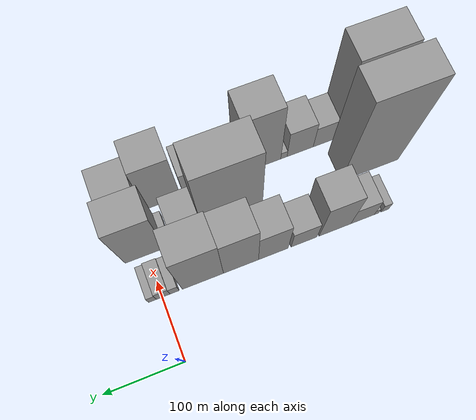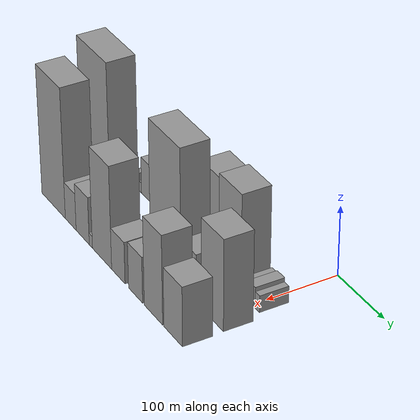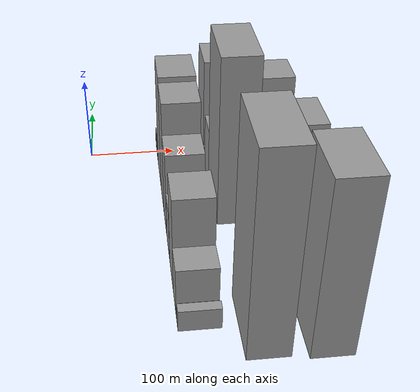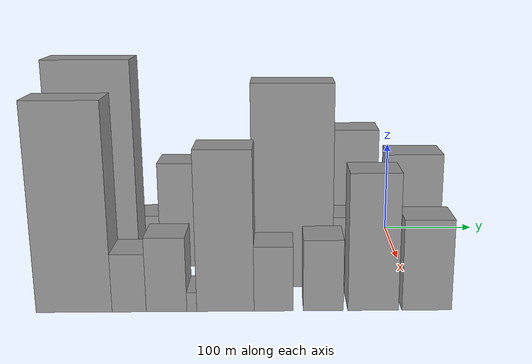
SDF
<sdf version="1.6">
 <world name="default">
  <model name="building_10">
   <static>1</static>
   <pose>100.0000 -290.2716 0 0.000000 0.000000 0.000000</pose>
   <link name="link">
    <pose>0 0 12.00 0 0 0</pose>
    <collision name="collision"><geometry><box><size>40.0000 10.3939 24.0000</size></box></geometry></collision>
    <visual name="visual">
     <cast_shadows>0</cast_shadows>
     <geometry><box><size>40.0000 10.3939 24.0000</size></box></geometry>
     <material>
      <script>
       <uri>model://grey_wall/materials/scripts</uri>
       <uri>model://grey_wall/materials/textures</uri>
       <name>vrc/grey_wall</name>
      </script>
     </material>
    </visual>
   </link>
  </model>
  <model name="building_11">
   <static>1</static>
   <pose>100.0000 -278.9836 0 0.000000 0.000000 0.000000</pose>
   <link name="link">
    <pose>0 0 7.50 0 0 0</pose>
    <collision name="collision"><geometry><box><size>40.0000 6.1822 15.0000</size></box></geometry></collision>
    <visual name="visual">
     <cast_shadows>0</cast_shadows>
     <geometry><box><size>40.0000 6.1822 15.0000</size></box></geometry>
     <material>
      <script>
       <uri>model://grey_wall/materials/scripts</uri>
       <uri>model://grey_wall/materials/textures</uri>
       <name>vrc/grey_wall</name>
      </script>
     </material>
    </visual>
   </link>
  </model>
  <model name="building_12">
   <static>1</static>
   <pose>100.0000 -260.1429 0 0.000000 0.000000 0.000000</pose>
   <link name="link">
    <pose>0 0 27.00 0 0 0</pose>
    <collision name="collision"><geometry><box><size>40.0000 31.4992 54.0000</size></box></geometry></collision>
    <visual name="visual">
     <cast_shadows>0</cast_shadows>
     <geometry><box><size>40.0000 31.4992 54.0000</size></box></geometry>
     <material>
      <script>
       <uri>model://grey_wall/materials/scripts</uri>
       <uri>model://grey_wall/materials/textures</uri>
       <name>vrc/grey_wall</name>
      </script>
     </material>
    </visual>
   </link>
  </model>
  <model name="building_13">
   <static>1</static>
   <pose>100.0000 -223.2417 0 0.000000 0.000000 0.000000</pose>
   <link name="link">
    <pose>0 0 54.00 0 0 0</pose>
    <collision name="collision"><geometry><box><size>40.0000 42.3031 108.0000</size></box></geometry></collision>
    <visual name="visual">
     <cast_shadows>0</cast_shadows>
     <geometry><box><size>40.0000 42.3031 108.0000</size></box></geometry>
     <material>
      <script>
       <uri>model://grey_wall/materials/scripts</uri>
       <uri>model://grey_wall/materials/textures</uri>
       <name>vrc/grey_wall</name>
      </script>
     </material>
    </visual>
   </link>
  </model>
  <model name="building_14">
   <static>1</static>
   <pose>100.0000 -182.0863 0 0.000000 0.000000 0.000000</pose>
   <link name="link">
    <pose>0 0 28.50 0 0 0</pose>
    <collision name="collision"><geometry><box><size>40.0000 34.0078 57.0000</size></box></geometry></collision>
    <visual name="visual">
     <cast_shadows>0</cast_shadows>
     <geometry><box><size>40.0000 34.0078 57.0000</size></box></geometry>
     <material>
      <script>
       <uri>model://grey_wall/materials/scripts</uri>
       <uri>model://grey_wall/materials/textures</uri>
       <name>vrc/grey_wall</name>
      </script>
     </material>
    </visual>
   </link>
  </model>
  <model name="building_15">
   <static>1</static>
   <pose>100.0000 -141.8271 0 0.000000 0.000000 0.000000</pose>
   <link name="link">
    <pose>0 0 49.50 0 0 0</pose>
    <collision name="collision"><geometry><box><size>40.0000 38.5107 99.0000</size></box></geometry></collision>
    <visual name="visual">
     <cast_shadows>0</cast_shadows>
     <geometry><box><size>40.0000 38.5107 99.0000</size></box></geometry>
     <material>
      <script>
       <uri>model://grey_wall/materials/scripts</uri>
       <uri>model://grey_wall/materials/textures</uri>
       <name>vrc/grey_wall</name>
      </script>
     </material>
    </visual>
   </link>
  </model>
  <model name="building_16">
   <static>1</static>
   <pose>100.0000 -100.0000 0 0.000000 0.000000 0.000000</pose>
   <link name="link">
    <pose>0 0 67.50 0 0 0</pose>
    <collision name="collision"><geometry><box><size>40.0000 45.1434 135.0000</size></box></geometry></collision>
    <visual name="visual">
     <cast_shadows>0</cast_shadows>
     <geometry><box><size>40.0000 45.1434 135.0000</size></box></geometry>
     <material>
      <script>
       <uri>model://grey_wall/materials/scripts</uri>
       <uri>model://grey_wall/materials/textures</uri>
       <name>vrc/grey_wall</name>
      </script>
     </material>
    </visual>
   </link>
  </model>
  <model name="building_17">
   <static>1</static>
   <pose>100.0000 -51.3280 0 0.000000 0.000000 0.000000</pose>
   <link name="link">
    <pose>0 0 70.50 0 0 0</pose>
    <collision name="collision"><geometry><box><size>40.0000 52.2006 141.0000</size></box></geometry></collision>
    <visual name="visual">
     <cast_shadows>0</cast_shadows>
     <geometry><box><size>40.0000 52.2006 141.0000</size></box></geometry>
     <material>
      <script>
       <uri>model://grey_wall/materials/scripts</uri>
       <uri>model://grey_wall/materials/textures</uri>
       <name>vrc/grey_wall</name>
      </script>
     </material>
    </visual>
   </link>
  </model>
  <model name="building_18">
   <static>1</static>
   <pose>100.0000 -15.4119 0 0.000000 0.000000 0.000000</pose>
   <link name="link">
    <pose>0 0 13.50 0 0 0</pose>
    <collision name="collision"><geometry><box><size>40.0000 11.6316 27.0000</size></box></geometry></collision>
    <visual name="visual">
     <cast_shadows>0</cast_shadows>
     <geometry><box><size>40.0000 11.6316 27.0000</size></box></geometry>
     <material>
      <script>
       <uri>model://grey_wall/materials/scripts</uri>
       <uri>model://grey_wall/materials/textures</uri>
       <name>vrc/grey_wall</name>
      </script>
     </material>
    </visual>
   </link>
  </model>
  <model name="building_19">
   <static>1</static>
   <pose>100.0000 -1.0945 0 0.000000 0.000000 0.000000</pose>
   <link name="link">
    <pose>0 0 15.00 0 0 0</pose>
    <collision name="collision"><geometry><box><size>40.0000 17.0032 30.0000</size></box></geometry></collision>
    <visual name="visual">
     <cast_shadows>0</cast_shadows>
     <geometry><box><size>40.0000 17.0032 30.0000</size></box></geometry>
     <material>
      <script>
       <uri>model://grey_wall/materials/scripts</uri>
       <uri>model://grey_wall/materials/textures</uri>
       <name>vrc/grey_wall</name>
      </script>
     </material>
    </visual>
   </link>
  </model>
  <model name="building_20">
   <static>1</static>
   <pose>100.0000 12.2904 0 0.000000 0.000000 0.000000</pose>
   <link name="link">
    <pose>0 0 12.00 0 0 0</pose>
    <collision name="collision"><geometry><box><size>40.0000 9.7668 24.0000</size></box></geometry></collision>
    <visual name="visual">
     <cast_shadows>0</cast_shadows>
     <geometry><box><size>40.0000 9.7668 24.0000</size></box></geometry>
     <material>
      <script>
       <uri>model://grey_wall/materials/scripts</uri>
       <uri>model://grey_wall/materials/textures</uri>
       <name>vrc/grey_wall</name>
      </script>
     </material>
    </visual>
   </link>
  </model>
  <model name="building_45">
   <static>1</static>
   <pose>155.0000 -294.8767 0 0.000000 0.000000 0.000000</pose>
   <link name="link">
    <pose>0 0 108.00 0 0 0</pose>
    <collision name="collision"><geometry><box><size>40.0000 78.9314 216.0000</size></box></geometry></collision>
    <visual name="visual">
     <cast_shadows>0</cast_shadows>
     <geometry><box><size>40.0000 78.9314 216.0000</size></box></geometry>
     <material>
      <script>
       <uri>model://grey_wall/materials/scripts</uri>
       <uri>model://grey_wall/materials/textures</uri>
       <name>vrc/grey_wall</name>
      </script>
     </material>
    </visual>
   </link>
  </model>
  <model name="building_46">
   <static>1</static>
   <pose>155.0000 -110.9300 0 0.000000 0.000000 0.000000</pose>
   <link name="link">
    <pose>0 0 97.50 0 0 0</pose>
    <collision name="collision"><geometry><box><size>40.0000 76.3207 195.0000</size></box></geometry></collision>
    <visual name="visual">
     <cast_shadows>0</cast_shadows>
     <geometry><box><size>40.0000 76.3207 195.0000</size></box></geometry>
     <material>
      <script>
       <uri>model://grey_wall/materials/scripts</uri>
       <uri>model://grey_wall/materials/textures</uri>
       <name>vrc/grey_wall</name>
      </script>
     </material>
    </visual>
   </link>
  </model>
  <model name="building_47">
   <static>1</static>
   <pose>155.0000 -54.3617 0 0.000000 0.000000 0.000000</pose>
   <link name="link">
    <pose>0 0 34.50 0 0 0</pose>
    <collision name="collision"><geometry><box><size>40.0000 36.8159 69.0000</size></box></geometry></collision>
    <visual name="visual">
     <cast_shadows>0</cast_shadows>
     <geometry><box><size>40.0000 36.8159 69.0000</size></box></geometry>
     <material>
      <script>
       <uri>model://grey_wall/materials/scripts</uri>
       <uri>model://grey_wall/materials/textures</uri>
       <name>vrc/grey_wall</name>
      </script>
     </material>
    </visual>
   </link>
  </model>
  <model name="building_48">
   <static>1</static>
   <pose>155.0000 -27.6196 0 0.000000 0.000000 0.000000</pose>
   <link name="link">
    <pose>0 0 10.50 0 0 0</pose>
    <collision name="collision"><geometry><box><size>40.0000 8.6682 21.0000</size></box></geometry></collision>
    <visual name="visual">
     <cast_shadows>0</cast_shadows>
     <geometry><box><size>40.0000 8.6682 21.0000</size></box></geometry>
     <material>
      <script>
       <uri>model://grey_wall/materials/scripts</uri>
       <uri>model://grey_wall/materials/textures</uri>
       <name>vrc/grey_wall</name>
      </script>
     </material>
    </visual>
   </link>
  </model>
  <model name="building_49">
   <static>1</static>
   <pose>155.0000 2.4574 0 0.000000 0.000000 0.000000</pose>
   <link name="link">
    <pose>0 0 64.50 0 0 0</pose>
    <collision name="collision"><geometry><box><size>40.0000 51.4859 129.0000</size></box></geometry></collision>
    <visual name="visual">
     <cast_shadows>0</cast_shadows>
     <geometry><box><size>40.0000 51.4859 129.0000</size></box></geometry>
     <material>
      <script>
       <uri>model://grey_wall/materials/scripts</uri>
       <uri>model://grey_wall/materials/textures</uri>
       <name>vrc/grey_wall</name>
      </script>
     </material>
    </visual>
   </link>
  </model>
  <model name="building_76">
   <static>1</static>
   <pose>210.0000 -305.0166 0 0.000000 0.000000 0.000000</pose>
   <link name="link">
    <pose>0 0 94.50 0 0 0</pose>
    <collision name="collision"><geometry><box><size>40.0000 66.9933 189.0000</size></box></geometry></collision>
    <visual name="visual">
     <cast_shadows>0</cast_shadows>
     <geometry><box><size>40.0000 66.9933 189.0000</size></box></geometry>
     <material>
      <script>
       <uri>model://grey_wall/materials/scripts</uri>
       <uri>model://grey_wall/materials/textures</uri>
       <name>vrc/grey_wall</name>
      </script>
     </material>
    </visual>
   </link>
  </model>
  <model name="building_77">
   <static>1</static>
   <pose>210.0000 -256.4347 0 0.000000 0.000000 0.000000</pose>
   <link name="link">
    <pose>0 0 27.00 0 0 0</pose>
    <collision name="collision"><geometry><box><size>40.0000 30.1704 54.0000</size></box></geometry></collision>
    <visual name="visual">
     <cast_shadows>0</cast_shadows>
     <geometry><box><size>40.0000 30.1704 54.0000</size></box></geometry>
     <material>
      <script>
       <uri>model://grey_wall/materials/scripts</uri>
       <uri>model://grey_wall/materials/textures</uri>
       <name>vrc/grey_wall</name>
      </script>
     </material>
    </visual>
   </link>
  </model>
  <model name="building_78">
   <static>1</static>
   <pose>210.0000 -223.4032 0 0.000000 0.000000 0.000000</pose>
   <link name="link">
    <pose>0 0 34.50 0 0 0</pose>
    <collision name="collision"><geometry><box><size>40.0000 35.8927 69.0000</size></box></geometry></collision>
    <visual name="visual">
     <cast_shadows>0</cast_shadows>
     <geometry><box><size>40.0000 35.8927 69.0000</size></box></geometry>
     <material>
      <script>
       <uri>model://grey_wall/materials/scripts</uri>
       <uri>model://grey_wall/materials/textures</uri>
       <name>vrc/grey_wall</name>
      </script>
     </material>
    </visual>
   </link>
  </model>
  <model name="building_79">
   <static>1</static>
   <pose>210.0000 -201.1148 0 0.000000 0.000000 0.000000</pose>
   <link name="link">
    <pose>0 0 9.00 0 0 0</pose>
    <collision name="collision"><geometry><box><size>40.0000 8.6841 18.0000</size></box></geometry></collision>
    <visual name="visual">
     <cast_shadows>0</cast_shadows>
     <geometry><box><size>40.0000 8.6841 18.0000</size></box></geometry>
     <material>
      <script>
       <uri>model://grey_wall/materials/scripts</uri>
       <uri>model://grey_wall/materials/textures</uri>
       <name>vrc/grey_wall</name>
      </script>
     </material>
    </visual>
   </link>
  </model>
  <model name="building_80">
   <static>1</static>
   <pose>210.0000 -171.3349 0 0.000000 0.000000 0.000000</pose>
   <link name="link">
    <pose>0 0 73.50 0 0 0</pose>
    <collision name="collision"><geometry><box><size>40.0000 50.8756 147.0000</size></box></geometry></collision>
    <visual name="visual">
     <cast_shadows>0</cast_shadows>
     <geometry><box><size>40.0000 50.8756 147.0000</size></box></geometry>
     <material>
      <script>
       <uri>model://grey_wall/materials/scripts</uri>
       <uri>model://grey_wall/materials/textures</uri>
       <name>vrc/grey_wall</name>
      </script>
     </material>
    </visual>
   </link>
  </model>
  <model name="building_81">
   <static>1</static>
   <pose>210.0000 -128.5498 0 0.000000 0.000000 0.000000</pose>
   <link name="link">
    <pose>0 0 30.00 0 0 0</pose>
    <collision name="collision"><geometry><box><size>40.0000 34.6947 60.0000</size></box></geometry></collision>
    <visual name="visual">
     <cast_shadows>0</cast_shadows>
     <geometry><box><size>40.0000 34.6947 60.0000</size></box></geometry>
     <material>
      <script>
       <uri>model://grey_wall/materials/scripts</uri>
       <uri>model://grey_wall/materials/textures</uri>
       <name>vrc/grey_wall</name>
      </script>
     </material>
    </visual>
   </link>
  </model>
  <model name="building_82">
   <static>1</static>
   <pose>210.0000 -84.4028 0 0.000000 0.000000 0.000000</pose>
   <link name="link">
    <pose>0 0 33.00 0 0 0</pose>
    <collision name="collision"><geometry><box><size>40.0000 35.5993 66.0000</size></box></geometry></collision>
    <visual name="visual">
     <cast_shadows>0</cast_shadows>
     <geometry><box><size>40.0000 35.5993 66.0000</size></box></geometry>
     <material>
      <script>
       <uri>model://grey_wall/materials/scripts</uri>
       <uri>model://grey_wall/materials/textures</uri>
       <name>vrc/grey_wall</name>
      </script>
     </material>
    </visual>
   </link>
  </model>
  <model name="building_83">
   <static>1</static>
   <pose>210.0000 -40.0048 0 0.000000 0.000000 0.000000</pose>
   <link name="link">
    <pose>0 0 63.00 0 0 0</pose>
    <collision name="collision"><geometry><box><size>40.0000 45.1968 126.0000</size></box></geometry></collision>
    <visual name="visual">
     <cast_shadows>0</cast_shadows>
     <geometry><box><size>40.0000 45.1968 126.0000</size></box></geometry>
     <material>
      <script>
       <uri>model://grey_wall/materials/scripts</uri>
       <uri>model://grey_wall/materials/textures</uri>
       <name>vrc/grey_wall</name>
      </script>
     </material>
    </visual>
   </link>
  </model>
  <model name="building_84">
   <static>1</static>
   <pose>210.0000 7.7388 0 0.000000 0.000000 0.000000</pose>
   <link name="link">
    <pose>0 0 42.00 0 0 0</pose>
    <collision name="collision"><geometry><box><size>40.0000 44.2904 84.0000</size></box></geometry></collision>
    <visual name="visual">
     <cast_shadows>0</cast_shadows>
     <geometry><box><size>40.0000 44.2904 84.0000</size></box></geometry>
     <material>
      <script>
       <uri>model://grey_wall/materials/scripts</uri>
       <uri>model://grey_wall/materials/textures</uri>
       <name>vrc/grey_wall</name>
      </script>
     </material>
    </visual>
   </link>
  </model>
 </world>
</sdf>
